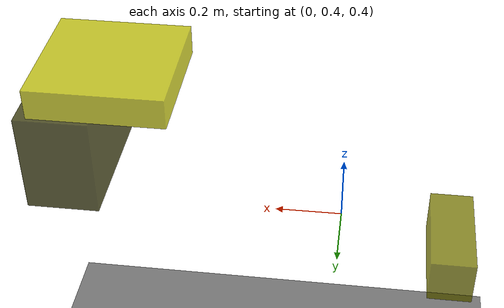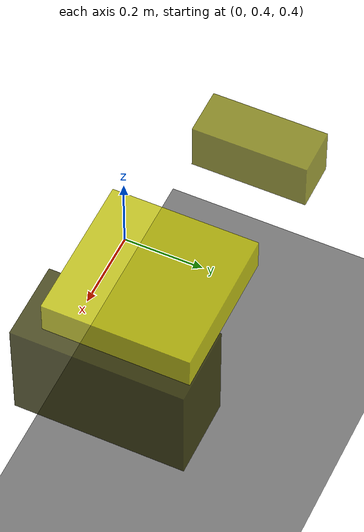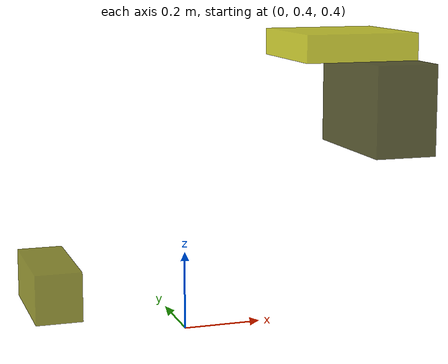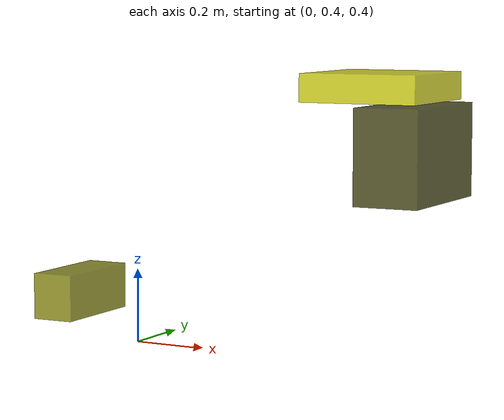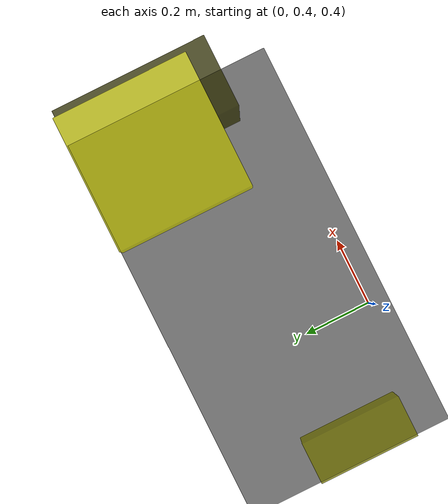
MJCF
<?xml version="1.0"?>
<mujoco model="obstacle_scene">
  <compiler angle="radian" coordinate="local"/>
  <option timestep="0.001" gravity="0 0 -9.81"/>

  <asset>
    <material name="obstacle_mat" rgba="0.8 0.8 0.0 0.8"/>
    <material name="ground_mat" rgba="0.5 0.5 0.5 1"/>
  </asset>

  <worldbody>
    <!-- Ground plane -->
    <geom name="ground" type="plane" size="3 3 0.1" material="ground_mat"/>

    <!-- Obstacles -->
    <body name="obstacle_0" pos="0.672903 0.712627 0.917119">
      <geom name="obs_0" type="box" size="0.090188 0.195553 0.129194" rgba="0.2 0.2 0.0 0.8"/>
    </body>
    <body name="obstacle_1" pos="-0.315226 0.601350 0.489081">
      <geom name="obs_1" type="box" size="0.060528 0.147155 0.064817" rgba="0.5 0.5 0.0 0.8"/>
    </body>
    <body name="obstacle_2" pos="0.563893 0.740550 1.091536">
      <geom name="obs_2" type="box" size="0.166444 0.165618 0.038497" rgba="0.8 0.8 0.0 0.8"/>
    </body>
  </worldbody>
</mujoco>
